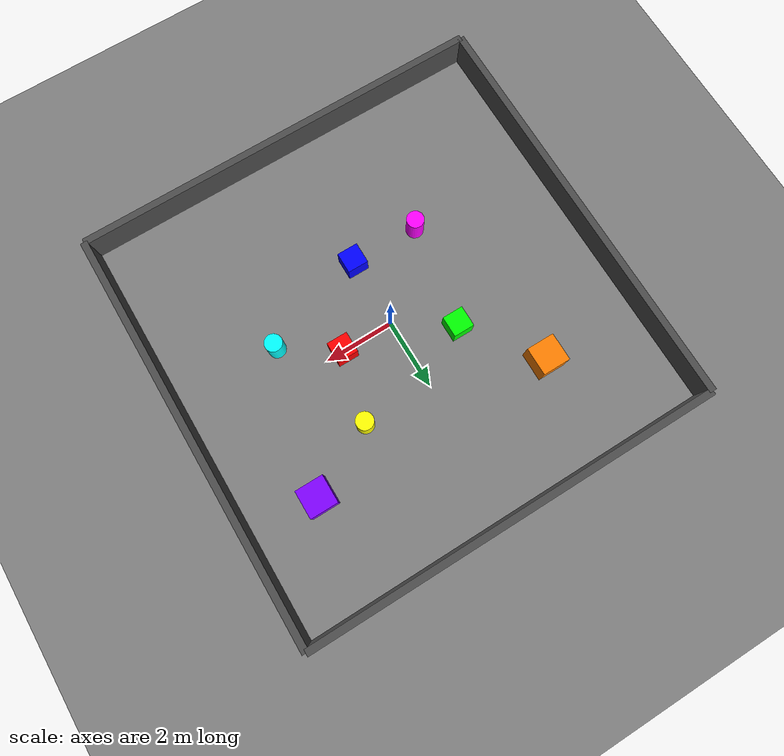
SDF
<?xml version="1.0" ?>
<sdf version="1.8">
  <world name="slam_test">
    <physics name="1ms" type="ignored">
      <max_step_size>0.001</max_step_size>
      <real_time_factor>1.0</real_time_factor>
    </physics>
    <plugin filename="libignition-gazebo-physics-system.so" name="ignition::gazebo::systems::Physics"/>
    <plugin filename="libignition-gazebo-user-commands-system.so" name="ignition::gazebo::systems::UserCommands"/>
    <plugin filename="libignition-gazebo-scene-broadcaster-system.so" name="ignition::gazebo::systems::SceneBroadcaster"/>
    <plugin filename="libignition-gazebo-sensors-system.so" name="ignition::gazebo::systems::Sensors">
      <render_engine>ogre2</render_engine>
    </plugin>
    <plugin filename="libignition-gazebo-contact-system.so" name="ignition::gazebo::systems::Contact"/>

    <light type="directional" name="sun">
      <pose>0 0 10 0 0 0</pose>
      <diffuse>0.8 0.8 0.8 1</diffuse>
      <specular>0.2 0.2 0.2 1</specular>
      <direction>-0.5 0.1 -0.9</direction>
    </light>

    <model name="ground">
      <static>true</static>
      <link name="link">
        <collision name="collision">
          <geometry><plane><normal>0 0 1</normal><size>50 50</size></plane></geometry>
        </collision>
        <visual name="visual">
          <geometry><plane><normal>0 0 1</normal><size>50 50</size></plane></geometry>
          <material><ambient>0.5 0.5 0.5 1</ambient></material>
        </visual>
      </link>
    </model>

    <!-- Outer Walls -->
    <model name="wall_north">
      <static>true</static>
      <pose>0 6 0.5 0 0 0</pose>
      <link name="link">
        <collision name="c"><geometry><box><size>12 0.2 1</size></box></geometry></collision>
        <visual name="v"><geometry><box><size>12 0.2 1</size></box></geometry>
          <material><ambient>0.3 0.3 0.3 1</ambient></material></visual>
      </link>
    </model>

    <model name="wall_south">
      <static>true</static>
      <pose>0 -6 0.5 0 0 0</pose>
      <link name="link">
        <collision name="c"><geometry><box><size>12 0.2 1</size></box></geometry></collision>
        <visual name="v"><geometry><box><size>12 0.2 1</size></box></geometry>
          <material><ambient>0.3 0.3 0.3 1</ambient></material></visual>
      </link>
    </model>

    <model name="wall_east">
      <static>true</static>
      <pose>6 0 0.5 0 0 0</pose>
      <link name="link">
        <collision name="c"><geometry><box><size>0.2 12 1</size></box></geometry></collision>
        <visual name="v"><geometry><box><size>0.2 12 1</size></box></geometry>
          <material><ambient>0.3 0.3 0.3 1</ambient></material></visual>
      </link>
    </model>

    <model name="wall_west">
      <static>true</static>
      <pose>-6 0 0.5 0 0 0</pose>
      <link name="link">
        <collision name="c"><geometry><box><size>0.2 12 1</size></box></geometry></collision>
        <visual name="v"><geometry><box><size>0.2 12 1</size></box></geometry>
          <material><ambient>0.3 0.3 0.3 1</ambient></material></visual>
      </link>
    </model>

    <!-- Obstacles close to robot -->
    <model name="box1">
      <static>true</static>
      <pose>1.5 0 0.3 0 0 0</pose>
      <link name="link">
        <collision name="c"><geometry><box><size>0.6 0.6 0.6</size></box></geometry></collision>
        <visual name="v"><geometry><box><size>0.6 0.6 0.6</size></box></geometry>
          <material><ambient>1 0 0 1</ambient></material></visual>
      </link>
    </model>

    <model name="box2">
      <static>true</static>
      <pose>-1.5 1 0.3 0 0 0</pose>
      <link name="link">
        <collision name="c"><geometry><box><size>0.6 0.6 0.6</size></box></geometry></collision>
        <visual name="v"><geometry><box><size>0.6 0.6 0.6</size></box></geometry>
          <material><ambient>0 1 0 1</ambient></material></visual>
      </link>
    </model>

    <model name="box3">
      <static>true</static>
      <pose>0 -2 0.3 0 0 0</pose>
      <link name="link">
        <collision name="c"><geometry><box><size>0.6 0.6 0.6</size></box></geometry></collision>
        <visual name="v"><geometry><box><size>0.6 0.6 0.6</size></box></geometry>
          <material><ambient>0 0 1 1</ambient></material></visual>
      </link>
    </model>

    <model name="cyl1">
      <static>true</static>
      <pose>2 2 0.4 0 0 0</pose>
      <link name="link">
        <collision name="c"><geometry><cylinder><radius>0.25</radius><length>0.8</length></cylinder></geometry></collision>
        <visual name="v"><geometry><cylinder><radius>0.25</radius><length>0.8</length></cylinder></geometry>
          <material><ambient>1 1 0 1</ambient></material></visual>
      </link>
    </model>

    <model name="cyl2">
      <static>true</static>
      <pose>-2 -2 0.4 0 0 0</pose>
      <link name="link">
        <collision name="c"><geometry><cylinder><radius>0.25</radius><length>0.8</length></cylinder></geometry></collision>
        <visual name="v"><geometry><cylinder><radius>0.25</radius><length>0.8</length></cylinder></geometry>
          <material><ambient>1 0 1 1</ambient></material></visual>
      </link>
    </model>

    <model name="cyl3">
      <static>true</static>
      <pose>3 -1 0.4 0 0 0</pose>
      <link name="link">
        <collision name="c"><geometry><cylinder><radius>0.25</radius><length>0.8</length></cylinder></geometry></collision>
        <visual name="v"><geometry><cylinder><radius>0.25</radius><length>0.8</length></cylinder></geometry>
          <material><ambient>0 1 1 1</ambient></material></visual>
      </link>
    </model>

    <model name="box4">
      <static>true</static>
      <pose>-3 3 0.4 0 0 0</pose>
      <link name="link">
        <collision name="c"><geometry><box><size>0.8 0.8 0.8</size></box></geometry></collision>
        <visual name="v"><geometry><box><size>0.8 0.8 0.8</size></box></geometry>
          <material><ambient>1 0.5 0 1</ambient></material></visual>
      </link>
    </model>

    <model name="box5">
      <static>true</static>
      <pose>4 3 0.4 0 0 0</pose>
      <link name="link">
        <collision name="c"><geometry><box><size>0.8 0.8 0.8</size></box></geometry></collision>
        <visual name="v"><geometry><box><size>0.8 0.8 0.8</size></box></geometry>
          <material><ambient>0.5 0 1 1</ambient></material></visual>
      </link>
    </model>

  </world>
</sdf>
